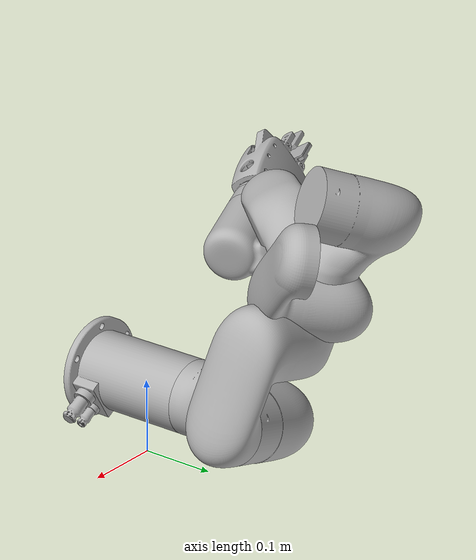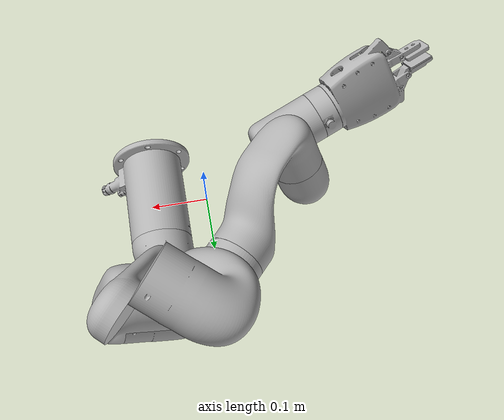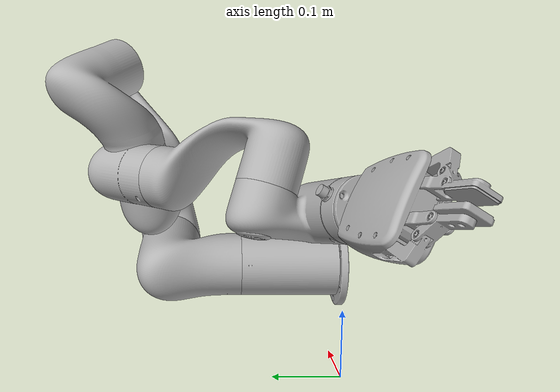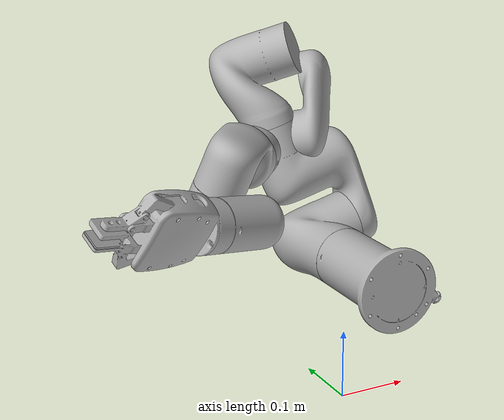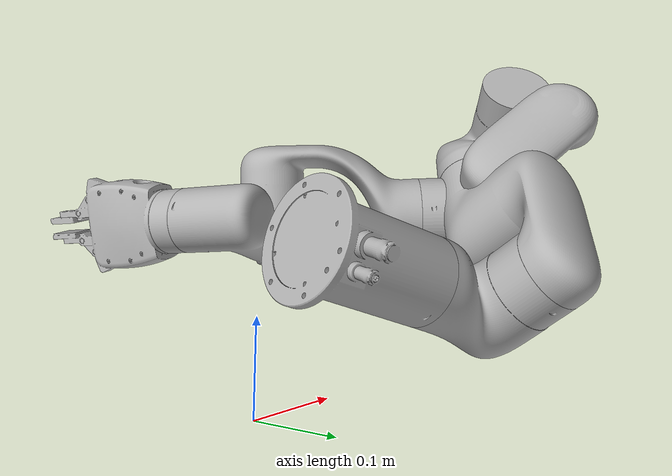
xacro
<?xml version="1.0" ?>
<robot name="xArm7_Faraday_with_Gripper" xmlns:xacro="http://www.ros.org/wiki/xacro">

<xacro:include filename="$(find xArm7_Faraday_with_Gripper_description)/urdf/materials.xacro" />
<xacro:include filename="$(find xArm7_Faraday_with_Gripper_description)/urdf/xArm7_Faraday_with_Gripper.trans" />
<xacro:include filename="$(find xArm7_Faraday_with_Gripper_description)/urdf/xArm7_Faraday_with_Gripper.gazebo" />
<link name="base_link">
  <inertial>
    <origin xyz="0.0843343990495026 0.06159898765754373 0.14807761937506092" rpy="0 0 0"/>
    <mass value="9.168237047321028"/>
    <inertia ixx="0.024997" iyy="0.011699" izz="0.025446" ixy="0.000525" iyz="-0.00026" ixz="0.000277"/>
  </inertial>
  <visual>
    <origin xyz="0 0 0" rpy="0 0 0"/>
    <geometry>
      <mesh filename="package://xArm7_Faraday_with_Gripper_description/meshes/base_link.stl" scale="0.001 0.001 0.001"/>
    </geometry>
    <material name="silver"/>
  </visual>
  <collision>
    <origin xyz="0 0 0" rpy="0 0 0"/>
    <geometry>
      <mesh filename="package://xArm7_Faraday_with_Gripper_description/meshes/base_link.stl" scale="0.001 0.001 0.001"/>
    </geometry>
  </collision>
</link>

<link name="J2_1">
  <inertial>
    <origin xyz="0.007329303381552854 0.08508747136628392 0.001006608539418169" rpy="0 0 0"/>
    <mass value="10.406176803034887"/>
    <inertia ixx="0.025477" iyy="0.017209" izz="0.030609" ixy="-0.003216" iyz="-0.000406" ixz="-0.000586"/>
  </inertial>
  <visual>
    <origin xyz="-0.083099 -0.142851 -0.148686" rpy="0 0 0"/>
    <geometry>
      <mesh filename="package://xArm7_Faraday_with_Gripper_description/meshes/J2_1.stl" scale="0.001 0.001 0.001"/>
    </geometry>
    <material name="silver"/>
  </visual>
  <collision>
    <origin xyz="-0.083099 -0.142851 -0.148686" rpy="0 0 0"/>
    <geometry>
      <mesh filename="package://xArm7_Faraday_with_Gripper_description/meshes/J2_1.stl" scale="0.001 0.001 0.001"/>
    </geometry>
  </collision>
</link>

<link name="J3_1">
  <inertial>
    <origin xyz="-0.03869505904654337 0.025737778683465717 0.0894872501008809" rpy="0 0 0"/>
    <mass value="12.518938673895388"/>
    <inertia ixx="0.039635" iyy="0.06082" izz="0.038697" ixy="0.005723" iyz="-0.00719" ixz="0.018455"/>
  </inertial>
  <visual>
    <origin xyz="-0.157922 -0.254851 -0.157111" rpy="0 0 0"/>
    <geometry>
      <mesh filename="package://xArm7_Faraday_with_Gripper_description/meshes/J3_1.stl" scale="0.001 0.001 0.001"/>
    </geometry>
    <material name="silver"/>
  </visual>
  <collision>
    <origin xyz="-0.157922 -0.254851 -0.157111" rpy="0 0 0"/>
    <geometry>
      <mesh filename="package://xArm7_Faraday_with_Gripper_description/meshes/J3_1.stl" scale="0.001 0.001 0.001"/>
    </geometry>
  </collision>
</link>

<link name="J4_1">
  <inertial>
    <origin xyz="0.009384348655303243 0.046325078718081114 0.07026322376646943" rpy="0 0 0"/>
    <mass value="8.93975815577092"/>
    <inertia ixx="0.020678" iyy="0.02145" izz="0.020703" ixy="-0.000856" iyz="-0.005343" ixz="-0.004334"/>
  </inertial>
  <visual>
    <origin xyz="-0.063029 -0.305876 -0.33279" rpy="0 0 0"/>
    <geometry>
      <mesh filename="package://xArm7_Faraday_with_Gripper_description/meshes/J4_1.stl" scale="0.001 0.001 0.001"/>
    </geometry>
    <material name="silver"/>
  </visual>
  <collision>
    <origin xyz="-0.063029 -0.305876 -0.33279" rpy="0 0 0"/>
    <geometry>
      <mesh filename="package://xArm7_Faraday_with_Gripper_description/meshes/J4_1.stl" scale="0.001 0.001 0.001"/>
    </geometry>
  </collision>
</link>

<link name="J5_1">
  <inertial>
    <origin xyz="-0.06218766689408073 0.0037965827600336954 0.08662371180514633" rpy="0 0 0"/>
    <mass value="10.369675507575852"/>
    <inertia ixx="0.031687" iyy="0.04476" izz="0.033648" ixy="0.0079" iyz="-0.005764" ixz="0.014851"/>
  </inertial>
  <visual>
    <origin xyz="-0.137335 -0.334516 -0.438348" rpy="0 0 0"/>
    <geometry>
      <mesh filename="package://xArm7_Faraday_with_Gripper_description/meshes/J5_1.stl" scale="0.001 0.001 0.001"/>
    </geometry>
    <material name="silver"/>
  </visual>
  <collision>
    <origin xyz="-0.137335 -0.334516 -0.438348" rpy="0 0 0"/>
    <geometry>
      <mesh filename="package://xArm7_Faraday_with_Gripper_description/meshes/J5_1.stl" scale="0.001 0.001 0.001"/>
    </geometry>
  </collision>
</link>

<link name="J6_1">
  <inertial>
    <origin xyz="0.03244360520270121 0.04446258592440583 0.09185329246083707" rpy="0 0 0"/>
    <mass value="6.198329134949828"/>
    <inertia ixx="0.030968" iyy="0.029505" izz="0.012961" ixy="-0.003221" iyz="-0.010123" ixz="-0.006246"/>
  </inertial>
  <visual>
    <origin xyz="-0.036614 -0.384421 -0.601399" rpy="0 0 0"/>
    <geometry>
      <mesh filename="package://xArm7_Faraday_with_Gripper_description/meshes/J6_1.stl" scale="0.001 0.001 0.001"/>
    </geometry>
    <material name="silver"/>
  </visual>
  <collision>
    <origin xyz="-0.036614 -0.384421 -0.601399" rpy="0 0 0"/>
    <geometry>
      <mesh filename="package://xArm7_Faraday_with_Gripper_description/meshes/J6_1.stl" scale="0.001 0.001 0.001"/>
    </geometry>
  </collision>
</link>

<link name="J7_1">
  <inertial>
    <origin xyz="-0.008544826753255602 -0.01630985052779721 0.048621244486503956" rpy="0 0 0"/>
    <mass value="5.675194243574739"/>
    <inertia ixx="0.012629" iyy="0.011856" izz="0.006626" ixy="0.000806" iyz="0.000912" ixz="-0.002671"/>
  </inertial>
  <visual>
    <origin xyz="-0.041924 -0.453159 -0.76014" rpy="0 0 0"/>
    <geometry>
      <mesh filename="package://xArm7_Faraday_with_Gripper_description/meshes/J7_1.stl" scale="0.001 0.001 0.001"/>
    </geometry>
    <material name="silver"/>
  </visual>
  <collision>
    <origin xyz="-0.041924 -0.453159 -0.76014" rpy="0 0 0"/>
    <geometry>
      <mesh filename="package://xArm7_Faraday_with_Gripper_description/meshes/J7_1.stl" scale="0.001 0.001 0.001"/>
    </geometry>
  </collision>
</link>

<link name="Tool_head_1">
  <inertial>
    <origin xyz="-0.0002849774884423062 0.011712719996090692 0.00599751306435492" rpy="0 0 0"/>
    <mass value="0.9325349660026085"/>
    <inertia ixx="0.000408" iyy="0.000624" izz="0.000478" ixy="-2.7e-05" iyz="0.000127" ixz="9e-06"/>
  </inertial>
  <visual>
    <origin xyz="-0.040798 -0.473751 -0.86064" rpy="0 0 0"/>
    <geometry>
      <mesh filename="package://xArm7_Faraday_with_Gripper_description/meshes/Tool_head_1.stl" scale="0.001 0.001 0.001"/>
    </geometry>
    <material name="silver"/>
  </visual>
  <collision>
    <origin xyz="-0.040798 -0.473751 -0.86064" rpy="0 0 0"/>
    <geometry>
      <mesh filename="package://xArm7_Faraday_with_Gripper_description/meshes/Tool_head_1.stl" scale="0.001 0.001 0.001"/>
    </geometry>
  </collision>
</link>

<link name="Gripper_G1_3D_File__With__1">
  <inertial>
    <origin xyz="-0.00516908880658383 0.05442988394416487 0.03221259137240928" rpy="0 0 0"/>
    <mass value="2.6976039760582937"/>
    <inertia ixx="0.005521" iyy="0.003222" izz="0.004702" ixy="0.000595" iyz="-0.001476" ixz="-0.000515"/>
  </inertial>
  <visual>
    <origin xyz="-0.038558 -0.497771 -0.874854" rpy="0 0 0"/>
    <geometry>
      <mesh filename="package://xArm7_Faraday_with_Gripper_description/meshes/Gripper_G1_3D_File__With__1.stl" scale="0.001 0.001 0.001"/>
    </geometry>
    <material name="silver"/>
  </visual>
  <collision>
    <origin xyz="-0.038558 -0.497771 -0.874854" rpy="0 0 0"/>
    <geometry>
      <mesh filename="package://xArm7_Faraday_with_Gripper_description/meshes/Gripper_G1_3D_File__With__1.stl" scale="0.001 0.001 0.001"/>
    </geometry>
  </collision>
</link>

<joint name="Revolute 1" type="continuous">
  <origin xyz="0.083099 0.142851 0.148686" rpy="0 0 0"/>
  <parent link="base_link"/>
  <child link="J2_1"/>
  <axis xyz="0.0 1.0 0.0"/>
</joint>

<joint name="Revolute 2" type="revolute">
  <origin xyz="0.074823 0.112 0.008425" rpy="0 0 0"/>
  <parent link="J2_1"/>
  <child link="J3_1"/>
  <axis xyz="0.994229 0.0 0.107275"/>
  <limit upper="1.745329" lower="-1.745329" effort="100" velocity="100"/>
</joint>

<joint name="Revolute 3" type="continuous">
  <origin xyz="-0.094893 0.051025 0.175679" rpy="0 0 0"/>
  <parent link="J3_1"/>
  <child link="J4_1"/>
  <axis xyz="-0.103411 0.26598 0.958416"/>
</joint>

<joint name="Revolute 4" type="revolute">
  <origin xyz="0.074306 0.02864 0.105558" rpy="0 0 0"/>
  <parent link="J4_1"/>
  <child link="J5_1"/>
  <axis xyz="0.779636 -0.576675 0.24416"/>
  <limit upper="3.403392" lower="0.610865" effort="100" velocity="100"/>
</joint>

<joint name="Revolute 5" type="continuous">
  <origin xyz="-0.100721 0.049905 0.163051" rpy="0 0 0"/>
  <parent link="J5_1"/>
  <child link="J6_1"/>
  <axis xyz="0.003484 0.393875 0.919157"/>
</joint>

<joint name="Revolute 6" type="revolute">
  <origin xyz="0.00531 0.068738 0.158741" rpy="0 0 0"/>
  <parent link="J6_1"/>
  <child link="J7_1"/>
  <axis xyz="-0.990241 -0.1267 0.058047"/>
  <limit upper="3.054326" lower="-0.174533" effort="100" velocity="100"/>
</joint>

<joint name="Revolute 7" type="continuous">
  <origin xyz="-0.001126 0.020592 0.1005" rpy="0 0 0"/>
  <parent link="J7_1"/>
  <child link="Tool_head_1"/>
  <axis xyz="-0.080007 0.857861 0.507616"/>
</joint>

<joint name="Rigid 8" type="fixed">
  <origin xyz="-0.00224 0.02402 0.014214" rpy="0 0 0"/>
  <parent link="Tool_head_1"/>
  <child link="Gripper_G1_3D_File__With__1"/>
</joint>

</robot>

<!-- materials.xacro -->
<robot name="xArm7_Faraday_with_Gripper" xmlns:xacro="http://www.ros.org/wiki/xacro" >

<material name="silver">
  <color rgba="0.700 0.700 0.700 1.000"/>
</material>

</robot>

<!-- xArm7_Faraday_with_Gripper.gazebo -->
<robot name="xArm7_Faraday_with_Gripper" xmlns:xacro="http://www.ros.org/wiki/xacro" >

<xacro:property name="body_color" value="Gazebo/Silver" />

<gazebo>
  <plugin name="control" filename="libgazebo_ros_control.so"/>
</gazebo>
<gazebo reference="base_link">
  <material>${body_color}</material>
  <mu1>0.2</mu1>
  <mu2>0.2</mu2>
  <selfCollide>true</selfCollide>
  <gravity>true</gravity>
</gazebo>

<gazebo reference="J2_1">
  <material>${body_color}</material>
  <mu1>0.2</mu1>
  <mu2>0.2</mu2>
  <selfCollide>true</selfCollide>
</gazebo>

<gazebo reference="J3_1">
  <material>${body_color}</material>
  <mu1>0.2</mu1>
  <mu2>0.2</mu2>
  <selfCollide>true</selfCollide>
</gazebo>

<gazebo reference="J4_1">
  <material>${body_color}</material>
  <mu1>0.2</mu1>
  <mu2>0.2</mu2>
  <selfCollide>true</selfCollide>
</gazebo>

<gazebo reference="J5_1">
  <material>${body_color}</material>
  <mu1>0.2</mu1>
  <mu2>0.2</mu2>
  <selfCollide>true</selfCollide>
</gazebo>

<gazebo reference="J6_1">
  <material>${body_color}</material>
  <mu1>0.2</mu1>
  <mu2>0.2</mu2>
  <selfCollide>true</selfCollide>
</gazebo>

<gazebo reference="J7_1">
  <material>${body_color}</material>
  <mu1>0.2</mu1>
  <mu2>0.2</mu2>
  <selfCollide>true</selfCollide>
</gazebo>

<gazebo reference="Tool_head_1">
  <material>${body_color}</material>
  <mu1>0.2</mu1>
  <mu2>0.2</mu2>
  <selfCollide>true</selfCollide>
</gazebo>

<gazebo reference="Gripper_G1_3D_File__With__1">
  <material>${body_color}</material>
  <mu1>0.2</mu1>
  <mu2>0.2</mu2>
  <selfCollide>true</selfCollide>
</gazebo>

</robot>
